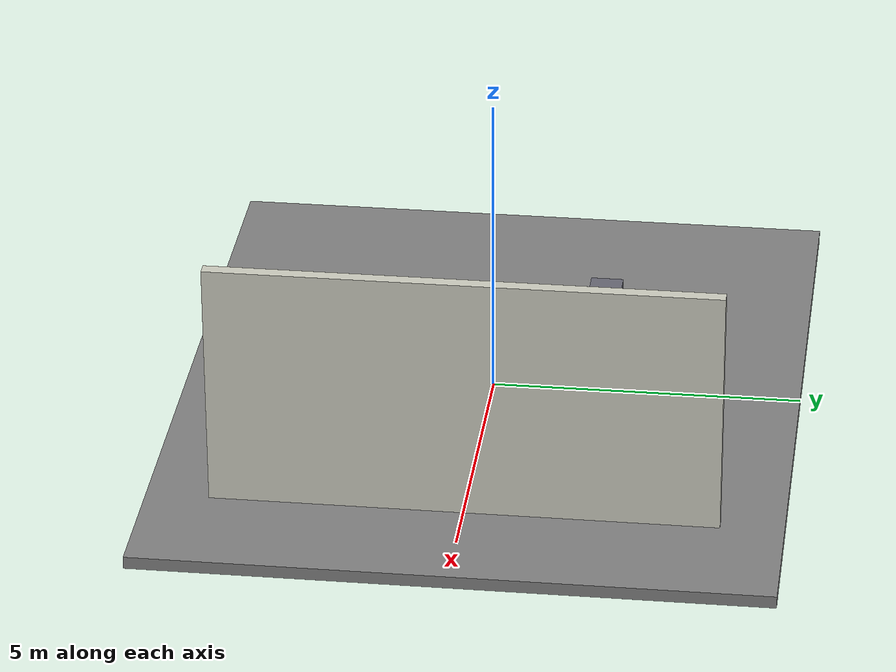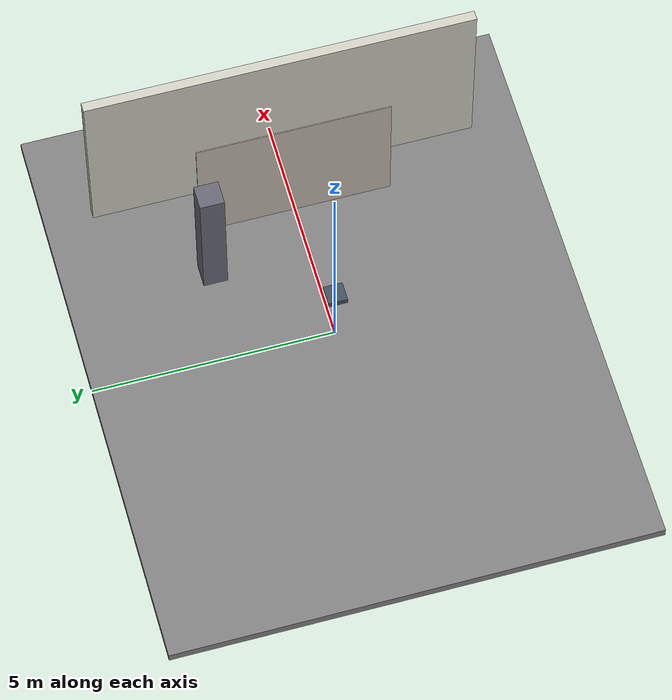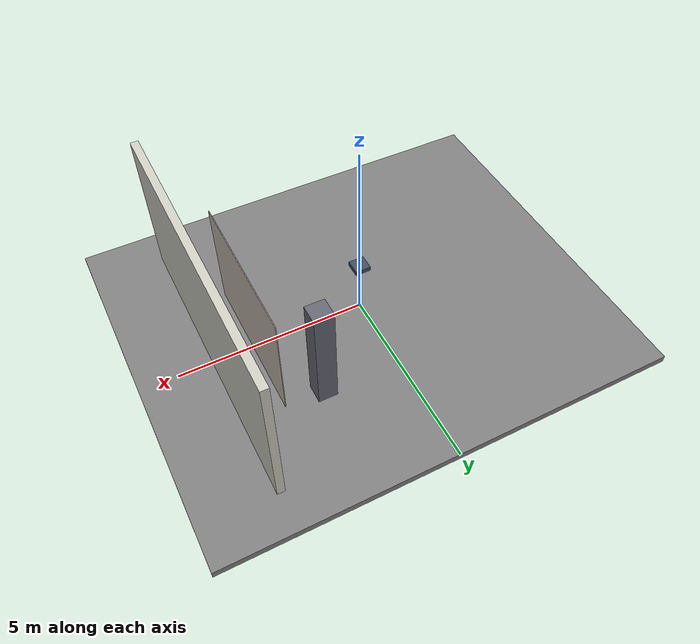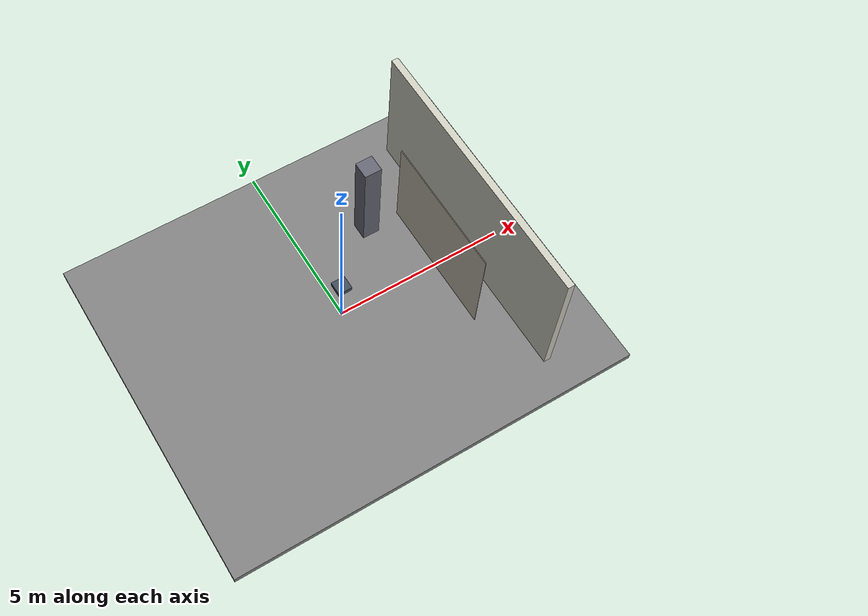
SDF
<?xml version="1.0"?>
<sdf version="1.12">
  <world name="p19_correspondence_readiness">
    <gravity>0 0 -9.81</gravity>
    <physics name="foundation" type="ignored"><max_step_size>0.001</max_step_size><real_time_factor>1</real_time_factor></physics>
    <plugin filename="gz-sim-physics-system" name="gz::sim::systems::Physics"/>
    <plugin filename="gz-sim-user-commands-system" name="gz::sim::systems::UserCommands"/>
    <plugin filename="gz-sim-scene-broadcaster-system" name="gz::sim::systems::SceneBroadcaster"/>
    <plugin filename="/tmp/p19-gazebo-instrumented/lib/gz-sim-10/plugins/libgz-sim-sensors-system.so.10.5.0" name="gz::sim::systems::Sensors"><render_engine>ogre2</render_engine></plugin>
    <plugin filename="gz-sim-imu-system" name="gz::sim::systems::Imu"/>
    <plugin filename="libp19_update_attestor.so" name="aegisinspect::p19_eval::UpdateAttestor"/>
    <plugin filename="libp19_batch_scene_configurator.so" name="aegisinspect::p19_eval::BatchSceneConfigurator"/>
    <scene><ambient>0.6 0.6 0.6 1</ambient><background>0.8 0.85 0.9 1</background></scene>
    <light name="bay_light" type="directional"><pose>0 0 8 0 0 0</pose>
      <diffuse>0.9 0.9 0.9 1</diffuse><specular>0.1 0.1 0.1 1</specular>
      <direction>0.3 0 -1</direction><cast_shadows>true</cast_shadows>
    </light>
    <model name="floor"><static>true</static><pose>0 0 -0.1 0 0 0</pose><link name="geometry">
      <collision name="collision"><geometry><box><size>12 10 0.2</size></box></geometry></collision>
      <visual name="visual"><geometry><box><size>12 10 0.2</size></box></geometry>
        <material><ambient>0.5 0.5 0.5 1</ambient><diffuse>0.5 0.5 0.5 1</diffuse></material></visual>
    </link></model>
    <model name="wall"><static>true</static><pose>4 0 2 0 0 0</pose><link name="geometry">
      <collision name="collision"><geometry><box><size>0.2 8 4</size></box></geometry></collision>
      <visual name="visual"><geometry><box><size>0.2 8 4</size></box></geometry>
        <material><ambient>0.8 0.8 0.75 1</ambient><diffuse>0.8 0.8 0.75 1</diffuse></material></visual>
    </link></model>
    <model name="column"><static>true</static><pose>2 2 1.5 0 0 0</pose><link name="geometry">
      <collision name="collision"><geometry><box><size>0.5 0.5 3</size></box></geometry></collision>
      <visual name="visual"><geometry><box><size>0.5 0.5 3</size></box></geometry>
        <material><ambient>0.4 0.4 0.45 1</ambient><diffuse>0.4 0.4 0.45 1</diffuse></material></visual>
    </link></model>
    <include><uri>model://p19_defect_target_001</uri><name>p19_defect_target_001</name><pose>3.01 0 1.5 0 0 0</pose></include>
    <include><uri>model://aegis_drone_p19_eval</uri><name>aegis_drone</name><pose>0 0 1.5 0 0 0</pose></include>
  </world>
</sdf>

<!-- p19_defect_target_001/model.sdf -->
<sdf version="1.12">
  <model name="p19_defect_target_001">
    <static>true</static>
    <!-- Model origin x=3.01 places the near/front surface anchor at world x=3.0. -->
    <link name="target_surface">
      <collision name="target_collision">
        <geometry><box><size>0.02 4.0 3.0</size></box></geometry>
      </collision>
      <visual name="defect_face">
        <geometry><box><size>0.02 4.0 3.0</size></box></geometry>
        <material>
          <ambient>0.65 0.62 0.57 1</ambient>
          <diffuse>0.75 0.72 0.67 1</diffuse>
          <pbr><metal>
            <albedo_map>materials/textures/honeycombing_v1.png</albedo_map>
            <roughness>0.92</roughness><metalness>0.0</metalness>
          </metal></pbr>
        </material>
      </visual>
    </link>
    <plugin filename="gz-sim-label-system" name="gz::sim::systems::Label">
      <label>19</label>
    </plugin>
  </model>
</sdf>

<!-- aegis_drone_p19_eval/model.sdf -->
<sdf version="1.12">
  <model name="aegis_drone">
    <static>false</static>
    <link name="base_link">
      <inertial><mass>1.5</mass><inertia>
        <ixx>0.0218</ixx><iyy>0.0218</iyy><izz>0.0400</izz>
        <ixy>0</ixy><ixz>0</ixz><iyz>0</iyz>
      </inertia></inertial>
      <collision name="body"><geometry><box><size>0.4 0.4 0.12</size></box></geometry></collision>
      <visual name="body"><geometry><box><size>0.4 0.4 0.12</size></box></geometry>
        <material><ambient>0.25 0.3 0.35 1</ambient><diffuse>0.25 0.3 0.35 1</diffuse></material>
      </visual>
      <!-- This RGB-D block is byte-equivalent in scientific settings to accepted P13. -->
      <sensor name="camera" type="rgbd_camera">
        <pose relative_to="camera_link">0 0 0 0 0 0</pose>
        <frame_id>camera_optical_frame</frame_id>
        <topic>/aegis/sim/sensors/camera</topic>
        <always_on>true</always_on><update_rate>30</update_rate>
        <camera>
          <camera_info_topic>/aegis/sim/sensors/camera/camera_info</camera_info_topic>
          <horizontal_fov>1.0471975511965976</horizontal_fov>
          <image><width>640</width><height>480</height><format>R8G8B8</format></image>
          <clip><near>0.1</near><far>20</far></clip>
        </camera>
      </sensor>
      <sensor name="p19_truth_camera" type="segmentation">
        <pose relative_to="camera_link">0 0 0 0 0 0</pose>
        <frame_id>camera_optical_frame</frame_id>
        <topic>/aegis/p19_eval/truth</topic>
        <always_on>true</always_on><update_rate>30</update_rate>
        <camera>
          <segmentation_type>semantic</segmentation_type>
          <horizontal_fov>1.0471975511965976</horizontal_fov>
          <image><width>640</width><height>480</height><format>R8G8B8</format></image>
          <clip><near>0.1</near><far>20</far></clip>
        </camera>
      </sensor>
      <sensor name="imu" type="imu">
        <pose relative_to="imu_link">0 0 0 0 0 0</pose><frame_id>imu_link</frame_id>
        <topic>/aegis/sim/sensors/imu/data</topic><always_on>true</always_on><update_rate>200</update_rate><imu/>
      </sensor>
      <sensor name="lidar" type="gpu_lidar">
        <pose relative_to="lidar_link">0 0 0 0 0 0</pose><frame_id>lidar_link</frame_id>
        <topic>/aegis/sim/sensors/lidar</topic><always_on>true</always_on><update_rate>10</update_rate>
        <lidar><scan>
          <horizontal><samples>360</samples><resolution>1</resolution><min_angle>-3.141592653589793</min_angle><max_angle>3.141592653589793</max_angle></horizontal>
          <vertical><samples>16</samples><resolution>1</resolution><min_angle>-0.2617993877991494</min_angle><max_angle>0.2617993877991494</max_angle></vertical>
        </scan><range><min>0.2</min><max>20</max><resolution>0.01</resolution></range></lidar>
      </sensor>
    </link>
    <frame name="camera_link" attached_to="base_link"><pose>0.25 0 0 0 0 0</pose></frame>
    <frame name="camera_optical_frame" attached_to="camera_link"><pose>0 0 0 -1.5707963267948966 0 -1.5707963267948966</pose></frame>
    <frame name="imu_link" attached_to="base_link"><pose>0 0 0 0 0 0</pose></frame>
    <frame name="lidar_link" attached_to="base_link"><pose>0 0 0.15 0 0 0</pose></frame>
    <plugin filename="libaegis_deterministic_motion.so" name="aegisinspect::sim::DeterministicMotionSystem"/>
  </model>
</sdf>
